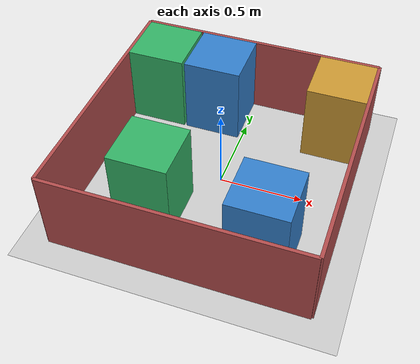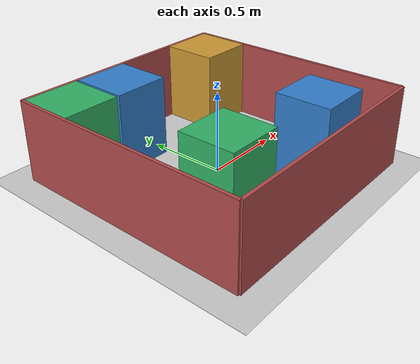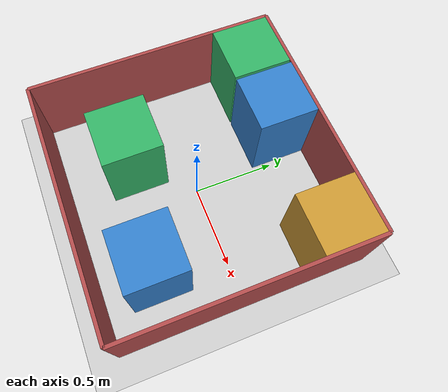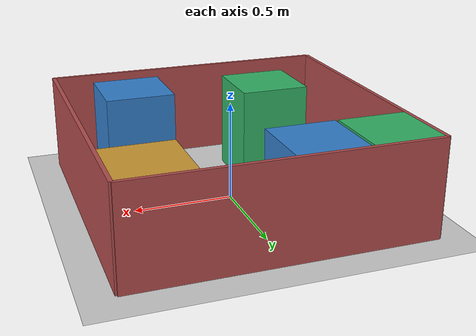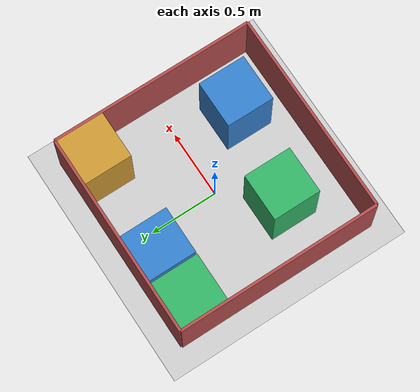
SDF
<sdf version='1.10'>
  <world name='default'>
    <physics name='1ms' type='ignored'>
      <max_step_size>0.001</max_step_size>
      <real_time_factor>1</real_time_factor>
      <real_time_update_rate>1000</real_time_update_rate>
    </physics>
    <plugin name='gz::sim::systems::Physics' filename='gz-sim-physics-system'/>
    <plugin name='gz::sim::systems::UserCommands' filename='gz-sim-user-commands-system'/>
    <plugin name='gz::sim::systems::SceneBroadcaster' filename='gz-sim-scene-broadcaster-system'/>
    <plugin filename="gz-sim-physics-system" name="gz::sim::systems::Physics"/>
    <plugin filename="gz-sim-user-commands-system" name="gz::sim::systems::UserCommands"/>
    <plugin filename="gz-sim-scene-broadcaster-system" name="gz::sim::systems::SceneBroadcaster"/>

    <plugin filename="gz-sim-sensors-system" name="gz::sim::systems::Sensors">
      <render_engine>ogre2</render_engine>
    </plugin>
    <gravity>0 0 -9.8000000000000007</gravity>
    <magnetic_field>5.5644999999999998e-06 2.2875799999999999e-05 -4.2388400000000002e-05</magnetic_field>
    <atmosphere type='adiabatic'/>
    <scene>
      <ambient>0.400000006 0.400000006 0.400000006 1</ambient>
      <background>0.699999988 0.699999988 0.699999988 1</background>
      <shadows>true</shadows>
    </scene>
    <model name='ground_plane'>
      <static>true</static>
      <link name='link'>
        <collision name='collision'>
          <geometry>
            <plane>
              <normal>0 0 1</normal>
              <size>100 100</size>
            </plane>
          </geometry>
          <surface>
            <friction>
              <ode/>
            </friction>
            <bounce/>
            <contact/>
          </surface>
        </collision>
        <visual name='visual'>
          <geometry>
            <plane>
              <normal>0 0 1</normal>
              <size>100 100</size>
            </plane>
          </geometry>
          <material>
            <ambient>0.800000012 0.800000012 0.800000012 1</ambient>
            <diffuse>0.800000012 0.800000012 0.800000012 1</diffuse>
          </material>
        </visual>
        <pose>0 0 0 0 0 0</pose>
        <inertial>
          <pose>0 0 0 0 0 0</pose>
          <mass>1</mass>
          <inertia>
            <ixx>1</ixx>
            <ixy>0</ixy>
            <ixz>0</ixz>
            <iyy>1</iyy>
            <iyz>0</iyz>
            <izz>1</izz>
          </inertia>
        </inertial>
        <enable_wind>false</enable_wind>
      </link>
      <pose>0 0 0 0 0 0</pose>
      <self_collide>false</self_collide>
    </model>
    <model name='room_walls'>
      <static>true</static>
      <link name='north_wall'>
        <pose>0.75 0 0.25 0 0 0</pose>
        <collision name='collision'>
          <geometry>
            <box>
              <size>0.02 1.5 0.5</size>
            </box>
          </geometry>
          <surface>
            <friction>
              <ode/>
            </friction>
            <bounce/>
            <contact/>
          </surface>
        </collision>
        <visual name='visual'>
          <geometry>
            <box>
              <size>0.02 1.5 0.5</size>
            </box>
          </geometry>
          <material>
            <ambient>0.699999988 0.300000012 0.300000012 1</ambient>
            <diffuse>0.699999988 0.300000012 0.300000012 1</diffuse>
          </material>
        </visual>
        <inertial>
          <pose>0 0 0 0 0 0</pose>
          <mass>1</mass>
          <inertia>
            <ixx>1</ixx>
            <ixy>0</ixy>
            <ixz>0</ixz>
            <iyy>1</iyy>
            <iyz>0</iyz>
            <izz>1</izz>
          </inertia>
        </inertial>
        <enable_wind>false</enable_wind>
      </link>
      <link name='south_wall'>
        <pose>-0.75 0 0.25 0 0 0</pose>
        <collision name='collision'>
          <geometry>
            <box>
              <size>0.02 1.5 0.5</size>
            </box>
          </geometry>
          <surface>
            <friction>
              <ode/>
            </friction>
            <bounce/>
            <contact/>
          </surface>
        </collision>
        <visual name='visual'>
          <geometry>
            <box>
              <size>0.02 1.5 0.5</size>
            </box>
          </geometry>
          <material>
            <ambient>0.699999988 0.300000012 0.300000012 1</ambient>
            <diffuse>0.699999988 0.300000012 0.300000012 1</diffuse>
          </material>
        </visual>
        <inertial>
          <pose>0 0 0 0 0 0</pose>
          <mass>1</mass>
          <inertia>
            <ixx>1</ixx>
            <ixy>0</ixy>
            <ixz>0</ixz>
            <iyy>1</iyy>
            <iyz>0</iyz>
            <izz>1</izz>
          </inertia>
        </inertial>
        <enable_wind>false</enable_wind>
      </link>
      <link name='east_wall'>
        <pose>0 0.75 0.25 0 0 0</pose>
        <collision name='collision'>
          <geometry>
            <box>
              <size>1.5 0.02 0.5</size>
            </box>
          </geometry>
          <surface>
            <friction>
              <ode/>
            </friction>
            <bounce/>
            <contact/>
          </surface>
        </collision>
        <visual name='visual'>
          <geometry>
            <box>
              <size>1.5 0.02 0.5</size>
            </box>
          </geometry>
          <material>
            <ambient>0.699999988 0.300000012 0.300000012 1</ambient>
            <diffuse>0.699999988 0.300000012 0.300000012 1</diffuse>
          </material>
        </visual>
        <inertial>
          <pose>0 0 0 0 0 0</pose>
          <mass>1</mass>
          <inertia>
            <ixx>1</ixx>
            <ixy>0</ixy>
            <ixz>0</ixz>
            <iyy>1</iyy>
            <iyz>0</iyz>
            <izz>1</izz>
          </inertia>
        </inertial>
        <enable_wind>false</enable_wind>
      </link>
      <link name='west_wall'>
        <pose>0 -0.75 0.25 0 0 0</pose>
        <collision name='collision'>
          <geometry>
            <box>
              <size>1.5 0.02 0.5</size>
            </box>
          </geometry>
          <surface>
            <friction>
              <ode/>
            </friction>
            <bounce/>
            <contact/>
          </surface>
        </collision>
        <visual name='visual'>
          <geometry>
            <box>
              <size>1.5 0.02 0.5</size>
            </box>
          </geometry>
          <material>
            <ambient>0.699999988 0.300000012 0.300000012 1</ambient>
            <diffuse>0.699999988 0.300000012 0.300000012 1</diffuse>
          </material>
        </visual>
        <inertial>
          <pose>0 0 0 0 0 0</pose>
          <mass>1</mass>
          <inertia>
            <ixx>1</ixx>
            <ixy>0</ixy>
            <ixz>0</ixz>
            <iyy>1</iyy>
            <iyz>0</iyz>
            <izz>1</izz>
          </inertia>
        </inertial>
        <enable_wind>false</enable_wind>
      </link>
      <pose>0 0 0 0 0 0</pose>
      <self_collide>false</self_collide>
    </model>
    <model name='obstacle_1_wall'>
      <static>true</static>
      <pose>0.39 -0.42 0.25 0 0 0</pose>
      <link name='link'>
        <collision name='col'>
          <geometry>
            <box>
              <size>0.34999999999999998 0.34999999999999998 0.5</size>
            </box>
          </geometry>
          <surface>
            <friction>
              <ode/>
            </friction>
            <bounce/>
            <contact/>
          </surface>
        </collision>
        <visual name='vis'>
          <geometry>
            <box>
              <size>0.34999999999999998 0.34999999999999998 0.5</size>
            </box>
          </geometry>
          <material>
            <ambient>0.200000003 0.5 0.800000012 1</ambient>
            <diffuse>0.200000003 0.5 0.800000012 1</diffuse>
          </material>
        </visual>
        <pose>0 0 0 0 0 0</pose>
        <inertial>
          <pose>0 0 0 0 0 0</pose>
          <mass>1</mass>
          <inertia>
            <ixx>1</ixx>
            <ixy>0</ixy>
            <ixz>0</ixz>
            <iyy>1</iyy>
            <iyz>0</iyz>
            <izz>1</izz>
          </inertia>
        </inertial>
        <enable_wind>false</enable_wind>
      </link>
      <self_collide>false</self_collide>
    </model>
    <model name='obstacle_2_wall'>
      <static>true</static>
      <pose>-0.20000000000000001 0.56499999999999995 0.25 0 0 0</pose>
      <link name='link'>
        <collision name='col'>
          <geometry>
            <box>
              <size>0.34999999999999998 0.34999999999999998 0.5</size>
            </box>
          </geometry>
          <surface>
            <friction>
              <ode/>
            </friction>
            <bounce/>
            <contact/>
          </surface>
        </collision>
        <visual name='vis'>
          <geometry>
            <box>
              <size>0.34999999999999998 0.34999999999999998 0.5</size>
            </box>
          </geometry>
          <material>
            <ambient>0.200000003 0.5 0.800000012 1</ambient>
            <diffuse>0.200000003 0.5 0.800000012 1</diffuse>
          </material>
        </visual>
        <pose>0 0 0 0 0 0</pose>
        <inertial>
          <pose>0 0 0 0 0 0</pose>
          <mass>1</mass>
          <inertia>
            <ixx>1</ixx>
            <ixy>0</ixy>
            <ixz>0</ixz>
            <iyy>1</iyy>
            <iyz>0</iyz>
            <izz>1</izz>
          </inertia>
        </inertial>
        <enable_wind>false</enable_wind>
      </link>
      <self_collide>false</self_collide>
    </model>
    <model name='obstacle_3_box'>
      <static>true</static>
      <pose>-0.56499999999999995 0.56499999999999995 0.25 0 0 0</pose>
      <link name='link'>
        <collision name='col'>
          <geometry>
            <box>
              <size>0.34999999999999998 0.34999999999999998 0.5</size>
            </box>
          </geometry>
          <surface>
            <friction>
              <ode/>
            </friction>
            <bounce/>
            <contact/>
          </surface>
        </collision>
        <visual name='vis'>
          <geometry>
            <box>
              <size>0.34999999999999998 0.34999999999999998 0.5</size>
            </box>
          </geometry>
          <material>
            <ambient>0.200000003 0.699999988 0.400000006 1</ambient>
            <diffuse>0.200000003 0.699999988 0.400000006 1</diffuse>
          </material>
        </visual>
        <pose>0 0 0 0 0 0</pose>
        <inertial>
          <pose>0 0 0 0 0 0</pose>
          <mass>1</mass>
          <inertia>
            <ixx>1</ixx>
            <ixy>0</ixy>
            <ixz>0</ixz>
            <iyy>1</iyy>
            <iyz>0</iyz>
            <izz>1</izz>
          </inertia>
        </inertial>
        <enable_wind>false</enable_wind>
      </link>
      <self_collide>false</self_collide>
    </model>
    <model name='obstacle_4_box'>
      <static>true</static>
      <pose>-0.30 -0.32 0.25 0 0 0</pose>
      <link name='link'>
        <collision name='col'>
          <geometry>
            <box>
              <size>0.34999999999999998 0.34999999999999998 0.5</size>
            </box>
          </geometry>
          <surface>
            <friction>
              <ode/>
            </friction>
            <bounce/>
            <contact/>
          </surface>
        </collision>
        <visual name='vis'>
          <geometry>
            <box>
              <size>0.34999999999999998 0.34999999999999998 0.5</size>
            </box>
          </geometry>
          <material>
            <ambient>0.200000003 0.699999988 0.400000006 1</ambient>
            <diffuse>0.200000003 0.699999988 0.400000006 1</diffuse>
          </material>
        </visual>
        <pose>0 0 0 0 0 0</pose>
        <inertial>
          <pose>0 0 0 0 0 0</pose>
          <mass>1</mass>
          <inertia>
            <ixx>1</ixx>
            <ixy>0</ixy>
            <ixz>0</ixz>
            <iyy>1</iyy>
            <iyz>0</iyz>
            <izz>1</izz>
          </inertia>
        </inertial>
        <enable_wind>false</enable_wind>
      </link>
      <self_collide>false</self_collide>
    </model>
    <model name='obstacle_5_box'>
      <static>true</static>
      <pose>0.56499999999999995 0.56499999999999995 0.25 0 0 0</pose>
      <link name='link'>
        <collision name='col'>
          <geometry>
            <box>
              <size>0.34999999999999998 0.34999999999999998 0.5</size>
            </box>
          </geometry>
          <surface>
            <friction>
              <ode/>
            </friction>
            <bounce/>
            <contact/>
          </surface>
        </collision>
        <visual name='vis'>
          <geometry>
            <box>
              <size>0.34999999999999998 0.34999999999999998 0.5</size>
            </box>
          </geometry>
          <material>
            <ambient>0.800000012 0.600000024 0.200000003 1</ambient>
            <diffuse>0.800000012 0.600000024 0.200000003 1</diffuse>
          </material>
        </visual>
        <pose>0 0 0 0 0 0</pose>
        <inertial>
          <pose>0 0 0 0 0 0</pose>
          <mass>1</mass>
          <inertia>
            <ixx>1</ixx>
            <ixy>0</ixy>
            <ixz>0</ixz>
            <iyy>1</iyy>
            <iyz>0</iyz>
            <izz>1</izz>
          </inertia>
        </inertial>
        <enable_wind>false</enable_wind>
      </link>
      <self_collide>false</self_collide>
    </model>
    <light name='sun' type='directional'>
      <pose>0 0 10 0 0 0</pose>
      <cast_shadows>true</cast_shadows>
      <intensity>1</intensity>
      <direction>-0.5 0.10000000000000001 -0.90000000000000002</direction>
      <diffuse>0.800000012 0.800000012 0.800000012 1</diffuse>
      <specular>0.200000003 0.200000003 0.200000003 1</specular>
      <attenuation>
        <range>10</range>
        <linear>1</linear>
        <constant>1</constant>
        <quadratic>0</quadratic>
      </attenuation>
      <spot>
        <inner_angle>0</inner_angle>
        <outer_angle>0</outer_angle>
        <falloff>0</falloff>
      </spot>
    </light>
  </world>
</sdf>
